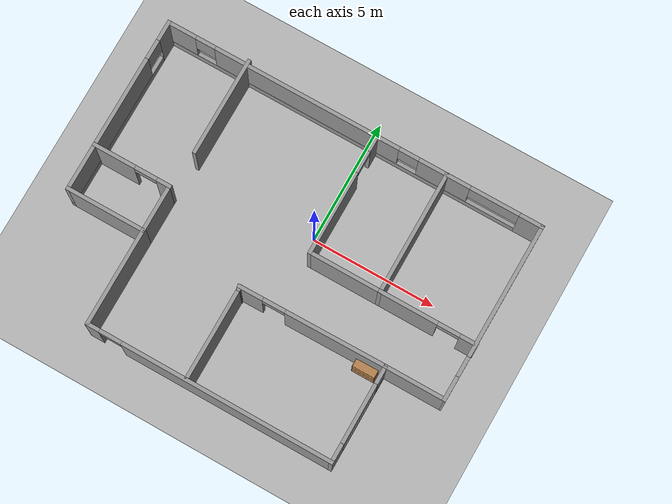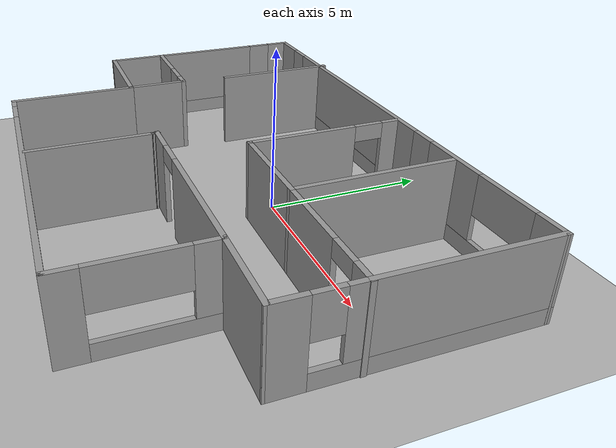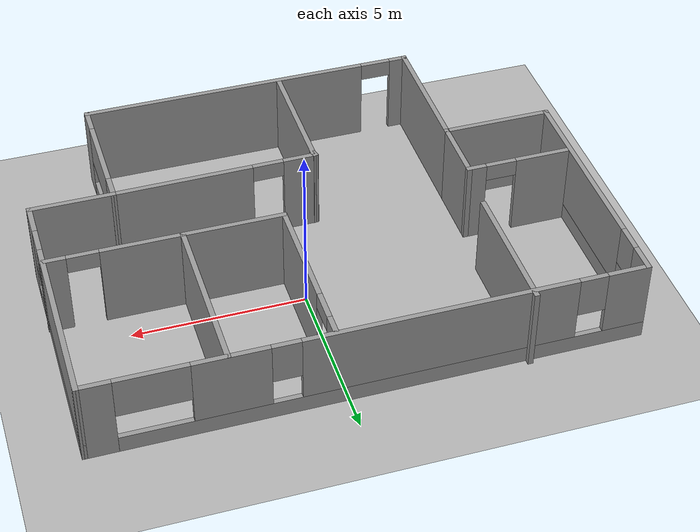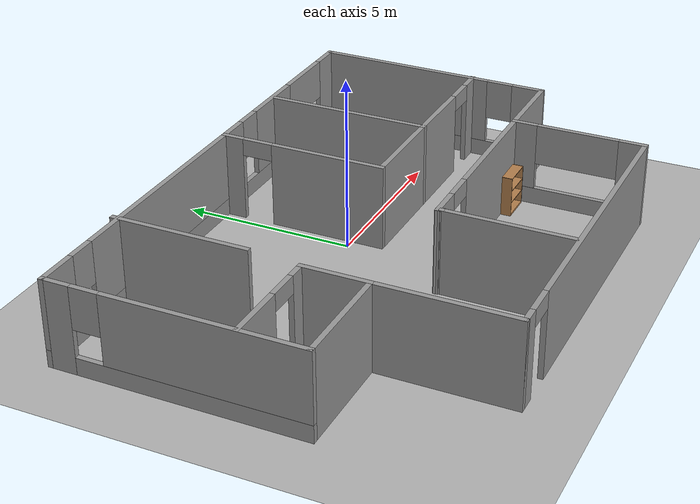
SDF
<sdf version="1.9">
 <world name="default">
  <gravity>0 0 -9.8</gravity>
  <magnetic_field>6e-06 2.3e-05 -4.2e-05</magnetic_field>
  <atmosphere type="adiabatic"/>
  <physics type="ode">
   <max_step_size>0.001</max_step_size>
   <real_time_factor>1</real_time_factor>
   <real_time_update_rate>1000</real_time_update_rate>
  </physics>
  <scene><ambient>0.4 0.4 0.4 1</ambient><background>0.7 0.7 0.7 1</background><shadows>true</shadows></scene>
  <model name="model">
   <pose>-0.629865 -1.42333 0 0 -0 0</pose>
   <link name="Wall_0">
    <pose>-0.000263 5.40063 0 0 -0 3.14159</pose>
    <visual name="Wall_0_Visual_0">
     <pose>-7.26449 0 1.25 0 -0 0</pose>
     <geometry><box><size>0.971021 0.15 2.5</size></box></geometry>
     <material>
      <script><uri>file://media/materials/scripts/gazebo.material</uri><name>Gazebo/Grey</name></script>
      <ambient>1 1 1 1</ambient>
     </material>
     <meta><layer>0</layer></meta>
    </visual>
    <collision name="Wall_0_Collision_0">
     <geometry><box><size>0.971021 0.15 2.5</size></box></geometry>
     <pose>-7.26449 0 1.25 0 -0 0</pose>
    </collision>
    <visual name="Wall_0_Visual_1">
     <pose>0.485511 0 0.25 0 -0 0</pose>
     <geometry><box><size>14.529 0.15 0.5</size></box></geometry>
     <material>
      <script><uri>file://media/materials/scripts/gazebo.material</uri><name>Gazebo/Grey</name></script>
      <ambient>1 1 1 1</ambient>
     </material>
     <meta><layer>0</layer></meta>
    </visual>
    <collision name="Wall_0_Collision_1">
     <geometry><box><size>14.529 0.15 0.5</size></box></geometry>
     <pose>0.485511 0 0.25 0 -0 0</pose>
    </collision>
    <visual name="Wall_0_Visual_2">
     <pose>-3.73328 0 1.5 0 -0 0</pose>
     <geometry><box><size>2.0914 0.15 2</size></box></geometry>
     <material>
      <script><uri>file://media/materials/scripts/gazebo.material</uri><name>Gazebo/Grey</name></script>
      <ambient>1 1 1 1</ambient>
     </material>
     <meta><layer>0</layer></meta>
    </visual>
    <collision name="Wall_0_Collision_2">
     <geometry><box><size>2.0914 0.15 2</size></box></geometry>
     <pose>-3.73328 0 1.5 0 -0 0</pose>
    </collision>
    <visual name="Wall_0_Visual_3">
     <pose>1.91797 0 1.5 0 -0 0</pose>
     <geometry><box><size>7.6111 0.15 2</size></box></geometry>
     <material>
      <script><uri>file://media/materials/scripts/gazebo.material</uri><name>Gazebo/Grey</name></script>
      <ambient>1 1 1 1</ambient>
     </material>
     <meta><layer>0</layer></meta>
    </visual>
    <collision name="Wall_0_Collision_3">
     <geometry><box><size>7.6111 0.15 2</size></box></geometry>
     <pose>1.91797 0 1.5 0 -0 0</pose>
    </collision>
    <visual name="Wall_0_Visual_4">
     <pose>7.13676 0 1.5 0 -0 0</pose>
     <geometry><box><size>1.22648 0.15 2</size></box></geometry>
     <material>
      <script><uri>file://media/materials/scripts/gazebo.material</uri><name>Gazebo/Grey</name></script>
      <ambient>1 1 1 1</ambient>
     </material>
     <meta><layer>0</layer></meta>
    </visual>
    <collision name="Wall_0_Collision_4">
     <geometry><box><size>1.22648 0.15 2</size></box></geometry>
     <pose>7.13676 0 1.5 0 -0 0</pose>
    </collision>
    <visual name="Wall_0_Visual_5">
     <pose>-5.77898 0 1.9 0 -0 0</pose>
     <geometry><box><size>2 0.15 1.2</size></box></geometry>
     <material>
      <script><uri>file://media/materials/scripts/gazebo.material</uri><name>Gazebo/Grey</name></script>
      <ambient>1 1 1 1</ambient>
     </material>
     <meta><layer>0</layer></meta>
    </visual>
    <collision name="Wall_0_Collision_5">
     <geometry><box><size>2 0.15 1.2</size></box></geometry>
     <pose>-5.77898 0 1.9 0 -0 0</pose>
    </collision>
    <visual name="Wall_0_Visual_6">
     <pose>-2.28758 0 1.9 0 -0 0</pose>
     <geometry><box><size>0.8 0.15 1.2</size></box></geometry>
     <material>
      <script><uri>file://media/materials/scripts/gazebo.material</uri><name>Gazebo/Grey</name></script>
      <ambient>1 1 1 1</ambient>
     </material>
     <meta><layer>0</layer></meta>
    </visual>
    <collision name="Wall_0_Collision_6">
     <geometry><box><size>0.8 0.15 1.2</size></box></geometry>
     <pose>-2.28758 0 1.9 0 -0 0</pose>
    </collision>
    <visual name="Wall_0_Visual_7">
     <pose>6.12352 0 1.9 0 -0 0</pose>
     <geometry><box><size>0.8 0.15 1.2</size></box></geometry>
     <material>
      <script><uri>file://media/materials/scripts/gazebo.material</uri><name>Gazebo/Grey</name></script>
      <ambient>1 1 1 1</ambient>
     </material>
     <meta><layer>0</layer></meta>
    </visual>
    <collision name="Wall_0_Collision_7">
     <geometry><box><size>0.8 0.15 1.2</size></box></geometry>
     <pose>6.12352 0 1.9 0 -0 0</pose>
    </collision>
    <inertial>
     <mass>1</mass>
     <inertia><ixx>1</ixx><ixy>0</ixy><ixz>0</ixz><iyy>1</iyy><iyz>0</iyz><izz>1</izz></inertia>
    </inertial>
   </link>
   <link name="Wall_12">
    <pose>5.27474 -3.62437 0 0 -0 1.5708</pose>
    <visual name="Wall_12_Visual_0">
     <pose>-1.58898 0 1.25 0 -0 0</pose>
     <geometry><box><size>0.822046 0.15 2.5</size></box></geometry>
     <material>
      <script><uri>file://media/materials/scripts/gazebo.material</uri><name>Gazebo/Grey</name></script>
      <ambient>1 1 1 1</ambient>
     </material>
     <meta><layer>0</layer></meta>
    </visual>
    <collision name="Wall_12_Collision_0">
     <geometry><box><size>0.822046 0.15 2.5</size></box></geometry>
     <pose>-1.58898 0 1.25 0 -0 0</pose>
    </collision>
    <visual name="Wall_12_Visual_1">
     <pose>0.411023 0 0.25 0 -0 0</pose>
     <geometry><box><size>3.17795 0.15 0.5</size></box></geometry>
     <material>
      <script><uri>file://media/materials/scripts/gazebo.material</uri><name>Gazebo/Grey</name></script>
      <ambient>1 1 1 1</ambient>
     </material>
     <meta><layer>0</layer></meta>
    </visual>
    <collision name="Wall_12_Collision_1">
     <geometry><box><size>3.17795 0.15 0.5</size></box></geometry>
     <pose>0.411023 0 0.25 0 -0 0</pose>
    </collision>
    <visual name="Wall_12_Visual_2">
     <pose>1.61102 0 1.5 0 -0 0</pose>
     <geometry><box><size>0.777954 0.15 2</size></box></geometry>
     <material>
      <script><uri>file://media/materials/scripts/gazebo.material</uri><name>Gazebo/Grey</name></script>
      <ambient>1 1 1 1</ambient>
     </material>
     <meta><layer>0</layer></meta>
    </visual>
    <collision name="Wall_12_Collision_2">
     <geometry><box><size>0.777954 0.15 2</size></box></geometry>
     <pose>1.61102 0 1.5 0 -0 0</pose>
    </collision>
    <visual name="Wall_12_Visual_3">
     <pose>0.022046 0 1.9 0 -0 0</pose>
     <geometry><box><size>2.4 0.15 1.2</size></box></geometry>
     <material>
      <script><uri>file://media/materials/scripts/gazebo.material</uri><name>Gazebo/Grey</name></script>
      <ambient>1 1 1 1</ambient>
     </material>
     <meta><layer>0</layer></meta>
    </visual>
    <collision name="Wall_12_Collision_3">
     <geometry><box><size>2.4 0.15 1.2</size></box></geometry>
     <pose>0.022046 0 1.9 0 -0 0</pose>
    </collision>
    <inertial>
     <mass>1</mass>
     <inertia><ixx>1</ixx><ixy>0</ixy><ixz>0</ixz><iyy>1</iyy><iyz>0</iyz><izz>1</izz></inertia>
    </inertial>
   </link>
   <link name="Wall_13">
    <collision name="Wall_13_Collision">
     <geometry><box><size>2.5 0.15 2.5</size></box></geometry>
     <pose>0 0 1.25 0 -0 0</pose>
    </collision>
    <visual name="Wall_13_Visual">
     <pose>0 0 1.25 0 -0 0</pose>
     <geometry><box><size>2.5 0.15 2.5</size></box></geometry>
     <material>
      <script><uri>file://media/materials/scripts/gazebo.material</uri><name>Gazebo/Grey</name></script>
      <ambient>1 1 1 1</ambient>
     </material>
     <meta><layer>0</layer></meta>
    </visual>
    <pose>6.44974 -1.69937 0 0 -0 0</pose>
    <inertial>
     <mass>1</mass>
     <inertia><ixx>1</ixx><ixy>0</ixy><ixz>0</ixz><iyy>1</iyy><iyz>0</iyz><izz>1</izz></inertia>
    </inertial>
   </link>
   <link name="Wall_14">
    <pose>7.64974 1.85063 0 0 -0 1.56375</pose>
    <visual name="Wall_14_Visual_0">
     <pose>-3.12543 0 1.25 0 -0 0</pose>
     <geometry><box><size>0.999325 0.15 2.5</size></box></geometry>
     <material>
      <script><uri>file://media/materials/scripts/gazebo.material</uri><name>Gazebo/Grey</name></script>
      <ambient>1 1 1 1</ambient>
     </material>
     <meta><layer>0</layer></meta>
    </visual>
    <collision name="Wall_14_Collision_0">
     <geometry><box><size>0.999325 0.15 2.5</size></box></geometry>
     <pose>-3.12543 0 1.25 0 -0 0</pose>
    </collision>
    <visual name="Wall_14_Visual_1">
     <pose>0.499662 0 0.25 0 -0 0</pose>
     <geometry><box><size>6.25085 0.15 0.5</size></box></geometry>
     <material>
      <script><uri>file://media/materials/scripts/gazebo.material</uri><name>Gazebo/Grey</name></script>
      <ambient>1 1 1 1</ambient>
     </material>
     <meta><layer>0</layer></meta>
    </visual>
    <collision name="Wall_14_Collision_1">
     <geometry><box><size>6.25085 0.15 0.5</size></box></geometry>
     <pose>0.499662 0 0.25 0 -0 0</pose>
    </collision>
    <visual name="Wall_14_Visual_2">
     <pose>0.899662 0 1.5 0 -0 0</pose>
     <geometry><box><size>5.45085 0.15 2</size></box></geometry>
     <material>
      <script><uri>file://media/materials/scripts/gazebo.material</uri><name>Gazebo/Grey</name></script>
      <ambient>1 1 1 1</ambient>
     </material>
     <meta><layer>0</layer></meta>
    </visual>
    <collision name="Wall_14_Collision_2">
     <geometry><box><size>5.45085 0.15 2</size></box></geometry>
     <pose>0.899662 0 1.5 0 -0 0</pose>
    </collision>
    <visual name="Wall_14_Visual_3">
     <pose>-2.22576 0 1.9 0 -0 0</pose>
     <geometry><box><size>0.8 0.15 1.2</size></box></geometry>
     <material>
      <script><uri>file://media/materials/scripts/gazebo.material</uri><name>Gazebo/Grey</name></script>
      <ambient>1 1 1 1</ambient>
     </material>
     <meta><layer>0</layer></meta>
    </visual>
    <collision name="Wall_14_Collision_3">
     <geometry><box><size>0.8 0.15 1.2</size></box></geometry>
     <pose>-2.22576 0 1.9 0 -0 0</pose>
    </collision>
    <inertial>
     <mass>1</mass>
     <inertia><ixx>1</ixx><ixy>0</ixy><ixz>0</ixz><iyy>1</iyy><iyz>0</iyz><izz>1</izz></inertia>
    </inertial>
   </link>
   <link name="Wall_16">
    <pose>0.964816 2.96567 0 0 0 -1.5708</pose>
    <visual name="Wall_16_Visual_0">
     <pose>-2.1585 0 1.25 0 -0 0</pose>
     <geometry><box><size>0.683 0.15 2.5</size></box></geometry>
     <material>
      <script><uri>file://media/materials/scripts/gazebo.material</uri><name>Gazebo/Grey</name></script>
      <ambient>1 1 1 1</ambient>
     </material>
     <meta><layer>0</layer></meta>
    </visual>
    <collision name="Wall_16_Collision_0">
     <geometry><box><size>0.683 0.15 2.5</size></box></geometry>
     <pose>-2.1585 0 1.25 0 -0 0</pose>
    </collision>
    <visual name="Wall_16_Visual_1">
     <pose>0.7915 0 1.25 0 -0 0</pose>
     <geometry><box><size>3.417 0.15 2.5</size></box></geometry>
     <material>
      <script><uri>file://media/materials/scripts/gazebo.material</uri><name>Gazebo/Grey</name></script>
      <ambient>1 1 1 1</ambient>
     </material>
     <meta><layer>0</layer></meta>
    </visual>
    <collision name="Wall_16_Collision_1">
     <geometry><box><size>3.417 0.15 2.5</size></box></geometry>
     <pose>0.7915 0 1.25 0 -0 0</pose>
    </collision>
    <visual name="Wall_16_Visual_2">
     <pose>-1.367 0 2.25 0 -0 0</pose>
     <geometry><box><size>0.9 0.15 0.5</size></box></geometry>
     <material>
      <script><uri>file://media/materials/scripts/gazebo.material</uri><name>Gazebo/Grey</name></script>
      <ambient>1 1 1 1</ambient>
     </material>
     <meta><layer>0</layer></meta>
    </visual>
    <collision name="Wall_16_Collision_2">
     <geometry><box><size>0.9 0.15 0.5</size></box></geometry>
     <pose>-1.367 0 2.25 0 -0 0</pose>
    </collision>
    <inertial>
     <mass>1</mass>
     <inertia><ixx>1</ixx><ixy>0</ixy><ixz>0</ixz><iyy>1</iyy><iyz>0</iyz><izz>1</izz></inertia>
    </inertial>
   </link>
   <link name="Wall_18">
    <collision name="Wall_18_Collision">
     <geometry><box><size>3 0.15 2.5</size></box></geometry>
     <pose>0 0 1.25 0 -0 0</pose>
    </collision>
    <visual name="Wall_18_Visual">
     <pose>0 0 1.25 0 -0 0</pose>
     <geometry><box><size>3 0.15 2.5</size></box></geometry>
     <material>
      <script><uri>file://media/materials/scripts/gazebo.material</uri><name>Gazebo/Grey</name></script>
      <ambient>1 1 1 1</ambient>
     </material>
     <meta><layer>0</layer></meta>
    </visual>
    <pose>2.38982 0.540673 0 0 -0 0</pose>
    <inertial>
     <mass>1</mass>
     <inertia><ixx>1</ixx><ixy>0</ixy><ixz>0</ixz><iyy>1</iyy><iyz>0</iyz><izz>1</izz></inertia>
    </inertial>
   </link>
   <link name="Wall_19">
    <collision name="Wall_19_Collision">
     <geometry><box><size>5 0.15 2.5</size></box></geometry>
     <pose>0 0 1.25 0 -0 0</pose>
    </collision>
    <visual name="Wall_19_Visual">
     <pose>0 0 1.25 0 -0 0</pose>
     <geometry><box><size>5 0.15 2.5</size></box></geometry>
     <material>
      <script><uri>file://media/materials/scripts/gazebo.material</uri><name>Gazebo/Grey</name></script>
      <ambient>1 1 1 1</ambient>
     </material>
     <meta><layer>0</layer></meta>
    </visual>
    <pose>3.81482 2.96567 0 0 -0 1.5708</pose>
    <inertial>
     <mass>1</mass>
     <inertia><ixx>1</ixx><ixy>0</ixy><ixz>0</ixz><iyy>1</iyy><iyz>0</iyz><izz>1</izz></inertia>
    </inertial>
   </link>
   <link name="Wall_2">
    <pose>-7.67526 1.85063 0 0 0 -1.5708</pose>
    <visual name="Wall_2_Visual_0">
     <pose>-3.20062 0 1.25 0 -0 0</pose>
     <geometry><box><size>0.848754 0.15 2.5</size></box></geometry>
     <material>
      <script><uri>file://media/materials/scripts/gazebo.material</uri><name>Gazebo/Grey</name></script>
      <ambient>1 1 1 1</ambient>
     </material>
     <meta><layer>0</layer></meta>
    </visual>
    <collision name="Wall_2_Collision_0">
     <geometry><box><size>0.848754 0.15 2.5</size></box></geometry>
     <pose>-3.20062 0 1.25 0 -0 0</pose>
    </collision>
    <visual name="Wall_2_Visual_1">
     <pose>0.424377 0 0.25 0 -0 0</pose>
     <geometry><box><size>6.40125 0.15 0.5</size></box></geometry>
     <material>
      <script><uri>file://media/materials/scripts/gazebo.material</uri><name>Gazebo/Grey</name></script>
      <ambient>1 1 1 1</ambient>
     </material>
     <meta><layer>0</layer></meta>
    </visual>
    <collision name="Wall_2_Collision_1">
     <geometry><box><size>6.40125 0.15 0.5</size></box></geometry>
     <pose>0.424377 0 0.25 0 -0 0</pose>
    </collision>
    <visual name="Wall_2_Visual_2">
     <pose>0.824377 0 1.5 0 -0 0</pose>
     <geometry><box><size>5.60125 0.15 2</size></box></geometry>
     <material>
      <script><uri>file://media/materials/scripts/gazebo.material</uri><name>Gazebo/Grey</name></script>
      <ambient>1 1 1 1</ambient>
     </material>
     <meta><layer>0</layer></meta>
    </visual>
    <collision name="Wall_2_Collision_2">
     <geometry><box><size>5.60125 0.15 2</size></box></geometry>
     <pose>0.824377 0 1.5 0 -0 0</pose>
    </collision>
    <visual name="Wall_2_Visual_3">
     <pose>-2.37625 0 1.9 0 -0 0</pose>
     <geometry><box><size>0.8 0.15 1.2</size></box></geometry>
     <material>
      <script><uri>file://media/materials/scripts/gazebo.material</uri><name>Gazebo/Grey</name></script>
      <ambient>1 1 1 1</ambient>
     </material>
     <meta><layer>0</layer></meta>
    </visual>
    <collision name="Wall_2_Collision_3">
     <geometry><box><size>0.8 0.15 1.2</size></box></geometry>
     <pose>-2.37625 0 1.9 0 -0 0</pose>
    </collision>
    <inertial>
     <mass>1</mass>
     <inertia><ixx>1</ixx><ixy>0</ixy><ixz>0</ixz><iyy>1</iyy><iyz>0</iyz><izz>1</izz></inertia>
    </inertial>
   </link>
   <link name="Wall_24">
    <pose>5.73982 0.540673 0 0 -0 0</pose>
    <visual name="Wall_24_Visual_0">
     <pose>-0.8088 0 1.25 0 -0 0</pose>
     <geometry><box><size>2.3824 0.15 2.5</size></box></geometry>
     <material>
      <script><uri>file://media/materials/scripts/gazebo.material</uri><name>Gazebo/Grey</name></script>
      <ambient>1 1 1 1</ambient>
     </material>
     <meta><layer>0</layer></meta>
    </visual>
    <collision name="Wall_24_Collision_0">
     <geometry><box><size>2.3824 0.15 2.5</size></box></geometry>
     <pose>-0.8088 0 1.25 0 -0 0</pose>
    </collision>
    <visual name="Wall_24_Visual_1">
     <pose>1.6412 0 1.25 0 -0 0</pose>
     <geometry><box><size>0.7176 0.15 2.5</size></box></geometry>
     <material>
      <script><uri>file://media/materials/scripts/gazebo.material</uri><name>Gazebo/Grey</name></script>
      <ambient>1 1 1 1</ambient>
     </material>
     <meta><layer>0</layer></meta>
    </visual>
    <collision name="Wall_24_Collision_1">
     <geometry><box><size>0.7176 0.15 2.5</size></box></geometry>
     <pose>1.6412 0 1.25 0 -0 0</pose>
    </collision>
    <visual name="Wall_24_Visual_2">
     <pose>0.8324 0 2.25 0 -0 0</pose>
     <geometry><box><size>0.9 0.15 0.5</size></box></geometry>
     <material>
      <script><uri>file://media/materials/scripts/gazebo.material</uri><name>Gazebo/Grey</name></script>
      <ambient>1 1 1 1</ambient>
     </material>
     <meta><layer>0</layer></meta>
    </visual>
    <collision name="Wall_24_Collision_2">
     <geometry><box><size>0.9 0.15 0.5</size></box></geometry>
     <pose>0.8324 0 2.25 0 -0 0</pose>
    </collision>
    <inertial>
     <mass>1</mass>
     <inertia><ixx>1</ixx><ixy>0</ixy><ixz>0</ixz><iyy>1</iyy><iyz>0</iyz><izz>1</izz></inertia>
    </inertial>
   </link>
   <link name="Wall_3">
    <collision name="Wall_3_Collision">
     <geometry><box><size>3.25 0.15 2.5</size></box></geometry>
     <pose>0 0 1.25 0 -0 0</pose>
    </collision>
    <visual name="Wall_3_Visual">
     <pose>0 0 1.25 0 -0 0</pose>
     <geometry><box><size>3.25 0.15 2.5</size></box></geometry>
     <material>
      <script><uri>file://media/materials/scripts/gazebo.material</uri><name>Gazebo/Grey</name></script>
      <ambient>1 1 1 1</ambient>
     </material>
     <meta><layer>0</layer></meta>
    </visual>
    <pose>-6.12526 -1.69937 0 0 -0 0</pose>
    <inertial>
     <mass>1</mass>
     <inertia><ixx>1</ixx><ixy>0</ixy><ixz>0</ixz><iyy>1</iyy><iyz>0</iyz><izz>1</izz></inertia>
    </inertial>
   </link>
   <link name="Wall_33">
    <collision name="Wall_33_Collision">
     <geometry><box><size>2 0.15 2.5</size></box></geometry>
     <pose>0 0 1.25 0 -0 0</pose>
    </collision>
    <visual name="Wall_33_Visual">
     <pose>0 0 1.25 0 -0 0</pose>
     <geometry><box><size>2 0.15 2.5</size></box></geometry>
     <material>
      <script><uri>file://media/materials/scripts/gazebo.material</uri><name>Gazebo/Grey</name></script>
      <ambient>1 1 1 1</ambient>
     </material>
     <meta><layer>0</layer></meta>
    </visual>
    <pose>-4.57526 -0.774373 0 0 -0 1.5708</pose>
    <inertial>
     <mass>1</mass>
     <inertia><ixx>1</ixx><ixy>0</ixy><ixz>0</ixz><iyy>1</iyy><iyz>0</iyz><izz>1</izz></inertia>
    </inertial>
   </link>
   <link name="Wall_34">
    <pose>-6.12526 0.150627 0 0 -0 3.14159</pose>
    <visual name="Wall_34_Visual_0">
     <pose>-1.32919 0 1.25 0 -0 0</pose>
     <geometry><box><size>0.591621 0.15 2.5</size></box></geometry>
     <material>
      <script><uri>file://media/materials/scripts/gazebo.material</uri><name>Gazebo/Grey</name></script>
      <ambient>1 1 1 1</ambient>
     </material>
     <meta><layer>0</layer></meta>
    </visual>
    <collision name="Wall_34_Collision_0">
     <geometry><box><size>0.591621 0.15 2.5</size></box></geometry>
     <pose>-1.32919 0 1.25 0 -0 0</pose>
    </collision>
    <visual name="Wall_34_Visual_1">
     <pose>0.745811 0 1.25 0 -0 0</pose>
     <geometry><box><size>1.75838 0.15 2.5</size></box></geometry>
     <material>
      <script><uri>file://media/materials/scripts/gazebo.material</uri><name>Gazebo/Grey</name></script>
      <ambient>1 1 1 1</ambient>
     </material>
     <meta><layer>0</layer></meta>
    </visual>
    <collision name="Wall_34_Collision_1">
     <geometry><box><size>1.75838 0.15 2.5</size></box></geometry>
     <pose>0.745811 0 1.25 0 -0 0</pose>
    </collision>
    <visual name="Wall_34_Visual_2">
     <pose>-0.583379 0 2.25 0 -0 0</pose>
     <geometry><box><size>0.9 0.15 0.5</size></box></geometry>
     <material>
      <script><uri>file://media/materials/scripts/gazebo.material</uri><name>Gazebo/Grey</name></script>
      <ambient>1 1 1 1</ambient>
     </material>
     <meta><layer>0</layer></meta>
    </visual>
    <collision name="Wall_34_Collision_2">
     <geometry><box><size>0.9 0.15 0.5</size></box></geometry>
     <pose>-0.583379 0 2.25 0 -0 0</pose>
    </collision>
    <inertial>
     <mass>1</mass>
     <inertia><ixx>1</ixx><ixy>0</ixy><ixz>0</ixz><iyy>1</iyy><iyz>0</iyz><izz>1</izz></inertia>
    </inertial>
   </link>
   <link name="Wall_36">
    <collision name="Wall_36_Collision">
     <geometry><box><size>3.75 0.15 2.5</size></box></geometry>
     <pose>0 0 1.25 0 -0 0</pose>
    </collision>
    <visual name="Wall_36_Visual">
     <pose>0 0 1.25 0 -0 0</pose>
     <geometry><box><size>3.75 0.15 2.5</size></box></geometry>
     <material>
      <script><uri>file://media/materials/scripts/gazebo.material</uri><name>Gazebo/Grey</name></script>
      <ambient>1 1 1 1</ambient>
     </material>
     <meta><layer>0</layer></meta>
    </visual>
    <pose>-0.569284 -3.65383 0 0 -0 1.5708</pose>
    <inertial>
     <mass>1</mass>
     <inertia><ixx>1</ixx><ixy>0</ixy><ixz>0</ixz><iyy>1</iyy><iyz>0</iyz><izz>1</izz></inertia>
    </inertial>
   </link>
   <link name="Wall_37">
    <collision name="Wall_37_Collision">
     <geometry><box><size>0.15 0.15 2.5</size></box></geometry>
     <pose>0 0 1.25 0 -0 0</pose>
    </collision>
    <visual name="Wall_37_Visual">
     <pose>0 0 1.25 0 -0 0</pose>
     <geometry><box><size>0.15 0.15 2.5</size></box></geometry>
     <material>
      <script><uri>file://media/materials/scripts/gazebo.material</uri><name>Gazebo/Grey</name></script>
      <ambient>1 1 1 1</ambient>
     </material>
     <meta><layer>0</layer></meta>
    </visual>
    <pose>-0.569284 -1.85383 0 0 -0 0</pose>
    <inertial>
     <mass>1</mass>
     <inertia><ixx>1</ixx><ixy>0</ixy><ixz>0</ixz><iyy>1</iyy><iyz>0</iyz><izz>1</izz></inertia>
    </inertial>
   </link>
   <link name="Wall_39">
    <collision name="Wall_39_Collision">
     <geometry><box><size>0.25 0.15 2.5</size></box></geometry>
     <pose>0 0 1.25 0 -0 0</pose>
    </collision>
    <visual name="Wall_39_Visual">
     <pose>0 0 1.25 0 -0 0</pose>
     <geometry><box><size>0.25 0.15 2.5</size></box></geometry>
     <material>
      <script><uri>file://media/materials/scripts/gazebo.material</uri><name>Gazebo/Grey</name></script>
      <ambient>1 1 1 1</ambient>
     </material>
     <meta><layer>0</layer></meta>
    </visual>
    <pose>-0.582225 -1.80553 0 0 -0 1.8326</pose>
    <inertial>
     <mass>1</mass>
     <inertia><ixx>1</ixx><ixy>0</ixy><ixz>0</ixz><iyy>1</iyy><iyz>0</iyz><izz>1</izz></inertia>
    </inertial>
   </link>
   <link name="Wall_4">
    <collision name="Wall_4_Collision">
     <geometry><box><size>4 0.15 2.5</size></box></geometry>
     <pose>0 0 1.25 0 -0 0</pose>
    </collision>
    <visual name="Wall_4_Visual">
     <pose>0 0 1.25 0 -0 0</pose>
     <geometry><box><size>4 0.15 2.5</size></box></geometry>
     <material>
      <script><uri>file://media/materials/scripts/gazebo.material</uri><name>Gazebo/Grey</name></script>
      <ambient>1 1 1 1</ambient>
     </material>
     <meta><layer>0</layer></meta>
    </visual>
    <pose>-4.57526 -3.62437 0 0 0 -1.5708</pose>
    <inertial>
     <mass>1</mass>
     <inertia><ixx>1</ixx><ixy>0</ixy><ixz>0</ixz><iyy>1</iyy><iyz>0</iyz><izz>1</izz></inertia>
    </inertial>
   </link>
   <link name="Wall_40">
    <pose>2.33979 -1.7283 0 0 -0 0.009857</pose>
    <visual name="Wall_40_Visual_0">
     <pose>-2.49722 0 1.25 0 -0 0</pose>
     <geometry><box><size>1.02576 0.15 2.5</size></box></geometry>
     <material>
      <script><uri>file://media/materials/scripts/gazebo.material</uri><name>Gazebo/Grey</name></script>
      <ambient>1 1 1 1</ambient>
     </material>
     <meta><layer>0</layer></meta>
    </visual>
    <collision name="Wall_40_Collision_0">
     <geometry><box><size>1.02576 0.15 2.5</size></box></geometry>
     <pose>-2.49722 0 1.25 0 -0 0</pose>
    </collision>
    <visual name="Wall_40_Visual_1">
     <pose>0.962878 0 1.25 0 -0 0</pose>
     <geometry><box><size>4.09443 0.15 2.5</size></box></geometry>
     <material>
      <script><uri>file://media/materials/scripts/gazebo.material</uri><name>Gazebo/Grey</name></script>
      <ambient>1 1 1 1</ambient>
     </material>
     <meta><layer>0</layer></meta>
    </visual>
    <collision name="Wall_40_Collision_1">
     <geometry><box><size>4.09443 0.15 2.5</size></box></geometry>
     <pose>0.962878 0 1.25 0 -0 0</pose>
    </collision>
    <visual name="Wall_40_Visual_2">
     <pose>-1.53434 0 2.25 0 -0 0</pose>
     <geometry><box><size>0.9 0.15 0.5</size></box></geometry>
     <material>
      <script><uri>file://media/materials/scripts/gazebo.material</uri><name>Gazebo/Grey</name></script>
      <ambient>1 1 1 1</ambient>
     </material>
     <meta><layer>0</layer></meta>
    </visual>
    <collision name="Wall_40_Collision_2">
     <geometry><box><size>0.9 0.15 0.5</size></box></geometry>
     <pose>-1.53434 0 2.25 0 -0 0</pose>
    </collision>
    <inertial>
     <mass>1</mass>
     <inertia><ixx>1</ixx><ixy>0</ixy><ixz>0</ixz><iyy>1</iyy><iyz>0</iyz><izz>1</izz></inertia>
    </inertial>
   </link>
   <link name="Wall_42">
    <collision name="Wall_42_Collision">
     <geometry><box><size>4 0.15 2.5</size></box></geometry>
     <pose>0 0 1.25 0 -0 0</pose>
    </collision>
    <visual name="Wall_42_Visual">
     <pose>0 0 1.25 0 -0 0</pose>
     <geometry><box><size>4 0.15 2.5</size></box></geometry>
     <material>
      <script><uri>file://media/materials/scripts/gazebo.material</uri><name>Gazebo/Grey</name></script>
      <ambient>1 1 1 1</ambient>
     </material>
     <meta><layer>0</layer></meta>
    </visual>
    <pose>-4.43098 3.62437 0 0 0 -1.5708</pose>
    <inertial>
     <mass>1</mass>
     <inertia><ixx>1</ixx><ixy>0</ixy><ixz>0</ixz><iyy>1</iyy><iyz>0</iyz><izz>1</izz></inertia>
    </inertial>
   </link>
   <link name="Wall_5">
    <pose>0.349737 -5.54937 0 0 -0 0</pose>
    <visual name="Wall_5_Visual_0">
     <pose>-4.71861 0 1.25 0 -0 0</pose>
     <geometry><box><size>0.562779 0.15 2.5</size></box></geometry>
     <material>
      <script><uri>file://media/materials/scripts/gazebo.material</uri><name>Gazebo/Grey</name></script>
      <ambient>1 1 1 1</ambient>
     </material>
     <meta><layer>0</layer></meta>
    </visual>
    <collision name="Wall_5_Collision_0">
     <geometry><box><size>0.562779 0.15 2.5</size></box></geometry>
     <pose>-4.71861 0 1.25 0 -0 0</pose>
    </collision>
    <visual name="Wall_5_Visual_1">
     <pose>0.731389 0 1.25 0 -0 0</pose>
     <geometry><box><size>8.53722 0.15 2.5</size></box></geometry>
     <material>
      <script><uri>file://media/materials/scripts/gazebo.material</uri><name>Gazebo/Grey</name></script>
      <ambient>1 1 1 1</ambient>
     </material>
     <meta><layer>0</layer></meta>
    </visual>
    <collision name="Wall_5_Collision_1">
     <geometry><box><size>8.53722 0.15 2.5</size></box></geometry>
     <pose>0.731389 0 1.25 0 -0 0</pose>
    </collision>
    <visual name="Wall_5_Visual_2">
     <pose>-3.98722 0 2.25 0 -0 0</pose>
     <geometry><box><size>0.9 0.15 0.5</size></box></geometry>
     <material>
      <script><uri>file://media/materials/scripts/gazebo.material</uri><name>Gazebo/Grey</name></script>
      <ambient>1 1 1 1</ambient>
     </material>
     <meta><layer>0</layer></meta>
    </visual>
    <collision name="Wall_5_Collision_2">
     <geometry><box><size>0.9 0.15 0.5</size></box></geometry>
     <pose>-3.98722 0 2.25 0 -0 0</pose>
    </collision>
    <inertial>
     <mass>1</mass>
     <inertia><ixx>1</ixx><ixy>0</ixy><ixz>0</ixz><iyy>1</iyy><iyz>0</iyz><izz>1</izz></inertia>
    </inertial>
   </link>
   <static>true</static>
  </model>
  <model name="Bookshelf">
   <static>true</static>
   <link name="link">
    <inertial>
     <mass>1</mass>
     <inertia><ixx>1</ixx><ixy>0</ixy><ixz>0</ixz><iyy>1</iyy><iyz>0</iyz><izz>1</izz></inertia>
    </inertial>
    <collision name="back">
     <pose>0 0.005 0.6 0 0 0</pose>
     <geometry><box><size>0.9 0.01 1.2</size></box></geometry>
    </collision>
    <visual name="visual1">
     <pose>0 0.005 0.6 0 0 0</pose>
     <geometry><box><size>0.9 0.01 1.2</size></box></geometry>
     <material>
      <diffuse>1 1 1 1</diffuse>
      <script><uri>file://media/materials/scripts/gazebo.material</uri><name>Gazebo/Wood</name></script>
      <pbr>
       <metal>
        <albedo_map>https://fuel.gazebosim.org/1.0/openrobotics/models/bookshelf/4/files/bookshelf_diffuse.jpg</albedo_map>
       </metal>
      </pbr>
     </material>
    </visual>
    <collision name="left_side">
     <pose>0.45 -0.195 0.6 0 0 0</pose>
     <geometry><box><size>0.02 0.4 1.2</size></box></geometry>
    </collision>
    <visual name="visual2">
     <pose>0.45 -0.195 0.6 0 0 0</pose>
     <geometry><box><size>0.02 0.4 1.2</size></box></geometry>
     <material>
      <diffuse>1 1 1 1</diffuse>
      <script><uri>file://media/materials/scripts/gazebo.material</uri><name>Gazebo/Wood</name></script>
      <pbr>
       <metal>
        <albedo_map>https://fuel.gazebosim.org/1.0/openrobotics/models/bookshelf/4/files/bookshelf_diffuse.jpg</albedo_map>
       </metal>
      </pbr>
     </material>
    </visual>
    <collision name="right_side">
     <pose>-0.45 -0.195 0.6 0 0 0</pose>
     <geometry><box><size>0.02 0.4 1.2</size></box></geometry>
    </collision>
    <visual name="visual3">
     <pose>-0.45 -0.195 0.6 0 0 0</pose>
     <geometry><box><size>0.02 0.4 1.2</size></box></geometry>
     <material>
      <diffuse>1 1 1 1</diffuse>
      <script><uri>file://media/materials/scripts/gazebo.material</uri><name>Gazebo/Wood</name></script>
      <pbr>
       <metal>
        <albedo_map>https://fuel.gazebosim.org/1.0/openrobotics/models/bookshelf/4/files/bookshelf_diffuse.jpg</albedo_map>
       </metal>
      </pbr>
     </material>
    </visual>
    <collision name="bottom">
     <pose>0 -0.195 0.03 0 0 0</pose>
     <geometry><box><size>0.88 0.4 0.06</size></box></geometry>
    </collision>
    <visual name="visual4">
     <pose>0 -0.195 0.03 0 0 0</pose>
     <geometry><box><size>0.88 0.4 0.06</size></box></geometry>
     <material>
      <diffuse>1 1 1 1</diffuse>
      <script><uri>file://media/materials/scripts/gazebo.material</uri><name>Gazebo/Wood</name></script>
      <pbr>
       <metal>
        <albedo_map>https://fuel.gazebosim.org/1.0/openrobotics/models/bookshelf/4/files/bookshelf_diffuse.jpg</albedo_map>
       </metal>
      </pbr>
     </material>
    </visual>
    <collision name="top">
     <pose>0 -0.195 1.19 0 0 0</pose>
     <geometry><box><size>0.88 0.4 0.02</size></box></geometry>
    </collision>
    <visual name="visual5">
     <pose>0 -0.195 1.19 0 0 0</pose>
     <geometry><box><size>0.88 0.4 0.02</size></box></geometry>
     <material>
      <diffuse>1 1 1 1</diffuse>
      <script><uri>file://media/materials/scripts/gazebo.material</uri><name>Gazebo/Wood</name></script>
      <pbr>
       <metal>
        <albedo_map>https://fuel.gazebosim.org/1.0/openrobotics/models/bookshelf/4/files/bookshelf_diffuse.jpg</albedo_map>
       </metal>
      </pbr>
     </material>
    </visual>
    <collision name="low_shelf">
     <pose>0 -0.195 0.43 0 0 0</pose>
     <geometry><box><size>0.88 0.4 0.02</size></box></geometry>
    </collision>
    <visual name="visual6">
     <pose>0 -0.195 0.43 0 0 0</pose>
     <geometry><box><size>0.88 0.4 0.02</size></box></geometry>
     <material>
      <diffuse>1 1 1 1</diffuse>
      <script><uri>file://media/materials/scripts/gazebo.material</uri><name>Gazebo/Wood</name></script>
      <pbr>
       <metal>
        <albedo_map>https://fuel.gazebosim.org/1.0/openrobotics/models/bookshelf/4/files/bookshelf_diffuse.jpg</albedo_map>
       </metal>
      </pbr>
     </material>
    </visual>
    <collision name="high_shelf">
     <pose>0 -0.195 0.8 0 0 0</pose>
     <geometry><box><size>0.88 0.4 0.02</size></box></geometry>
    </collision>
    <visual name="visual7">
     <pose>0 -0.195 0.8 0 0 0</pose>
     <geometry><box><size>0.88 0.4 0.02</size></box></geometry>
     <material>
      <diffuse>1 1 1 1</diffuse>
      <script><uri>file://media/materials/scripts/gazebo.material</uri><name>Gazebo/Wood</name></script>
      <pbr>
       <metal>
        <albedo_map>https://fuel.gazebosim.org/1.0/openrobotics/models/bookshelf/4/files/bookshelf_diffuse.jpg</albedo_map>
       </metal>
      </pbr>
     </material>
    </visual>
   </link>
   <pose>4.00525 -3.12022 0 0 -0 0</pose>
  </model>
  <model name="ground_plane">
   <static>true</static>
   <link name="link">
    <collision name="collision">
     <geometry><plane><normal>0 0 1</normal><size>100 100</size></plane></geometry>
     <surface><friction><ode><mu>100</mu><mu2>50</mu2></ode></friction></surface>
    </collision>
    <visual name="visual">
     <cast_shadows>false</cast_shadows>
     <geometry><plane><normal>0 0 1</normal><size>100 100</size></plane></geometry>
     <material>
      <ambient>0.3 0.3 0.3 1</ambient>
      <diffuse>0.7 0.7 0.7 1</diffuse>
      <specular>0.01 0.01 0.01 1</specular>
     </material>
    </visual>
    <inertial>
     <mass>1</mass>
     <inertia><ixx>1</ixx><ixy>0</ixy><ixz>0</ixz><iyy>1</iyy><iyz>0</iyz><izz>1</izz></inertia>
    </inertial>
   </link>
   <pose>-4.38679 -3.67953 0 0 -0 0</pose>
  </model>
  <light name="sun" type="directional">
   <pose>-9.997 15.67 10 0 -0 0</pose>
   <intensity>1</intensity>
   <direction>-0.5 0.1 -0.9</direction>
   <diffuse>0.8 0.8 0.8 1</diffuse>
   <specular>0.2 0.2 0.2 1</specular>
   <attenuation>
    <range>1000</range>
    <linear>0.01</linear>
    <constant>0.90000000000000002</constant>
    <quadratic>0.001</quadratic>
   </attenuation>
   <spot><inner_angle>0</inner_angle><outer_angle>0</outer_angle><falloff>0</falloff></spot>
  </light>
 </world>
</sdf>
